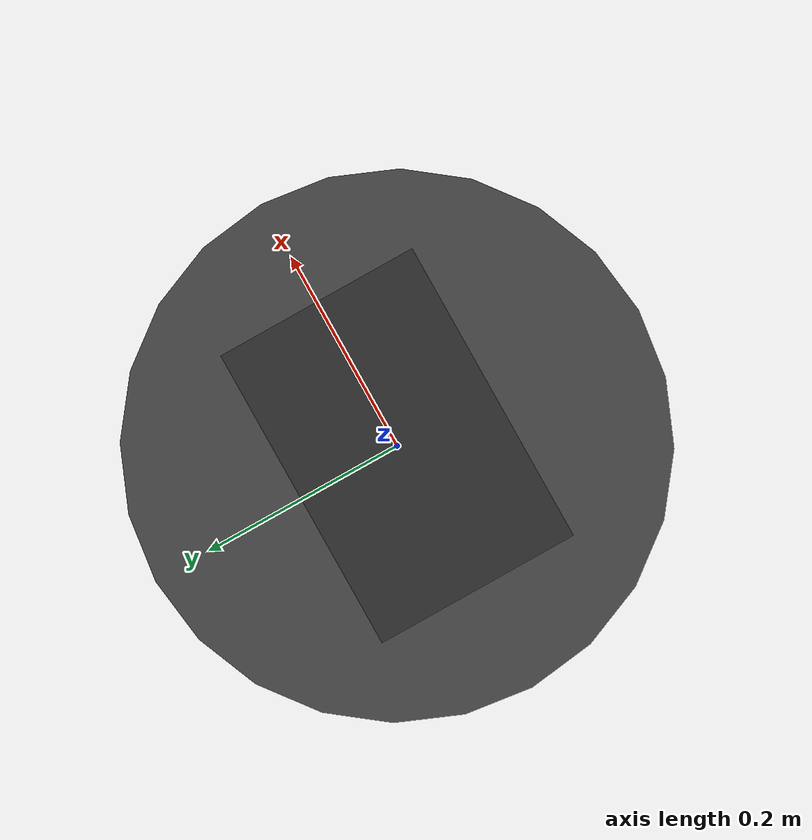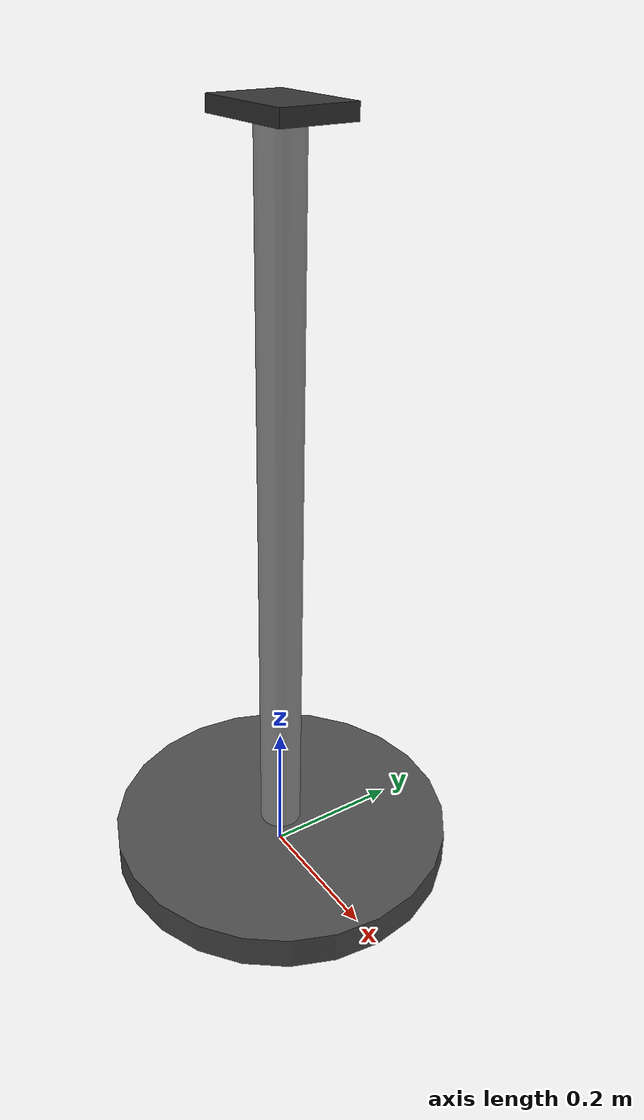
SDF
<sdf version="1.9">
  <model name="camera_stand">
    <static>true</static>

    <link name="stand_link">

      <!-- ================= BASE ================= -->
      <collision name="base_collision">
        <pose>0 0 0.025 0 0 0</pose>
        <geometry>
          <cylinder>
            <radius>0.25</radius>
            <length>0.05</length>
          </cylinder>
        </geometry>
      </collision>

      <visual name="base_visual">
        <pose>0 0 0.025 0 0 0</pose>
        <geometry>
          <cylinder>
            <radius>0.25</radius>
            <length>0.05</length>
          </cylinder>
        </geometry>
        <material>
          <ambient>0.3 0.3 0.3 1</ambient>
          <diffuse>0.3 0.3 0.3 1</diffuse>
        </material>
      </visual>

      <!-- ================= POLE ================= -->
      <collision name="pole_collision">
        <pose>0 0 0.55 0 0 0</pose>
        <geometry>
          <cylinder>
            <radius>0.03</radius>
            <length>1.0</length>
          </cylinder>
        </geometry>
      </collision>

      <visual name="pole_visual">
        <pose>0 0 0.55 0 0 0</pose>
        <geometry>
          <cylinder>
            <radius>0.03</radius>
            <length>1.0</length>
          </cylinder>
        </geometry>
        <material>
          <ambient>0.6 0.6 0.6 1</ambient>
          <diffuse>0.6 0.6 0.6 1</diffuse>
        </material>
      </visual>

      <!-- ================= CAMERA PLATE ================= -->
      <collision name="plate_collision">
        <pose>0 0 1.05 0 0 0</pose>
        <geometry>
          <box>
            <size>0.15 0.10 0.02</size>
          </box>
        </geometry>
      </collision>

      <visual name="plate_visual">
        <pose>0 0 1.05 0 0 0</pose>
        <geometry>
          <box>
            <size>0.15 0.10 0.02</size>
          </box>
        </geometry>
        <material>
          <ambient>0.2 0.2 0.2 1</ambient>
          <diffuse>0.2 0.2 0.2 1</diffuse>
        </material>
      </visual>

    </link>
  </model>
</sdf>
